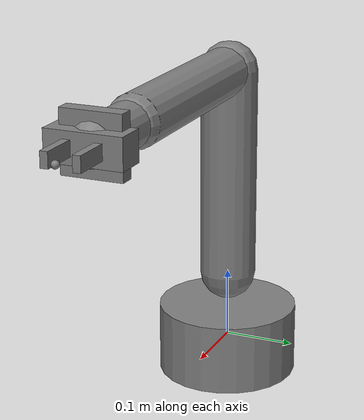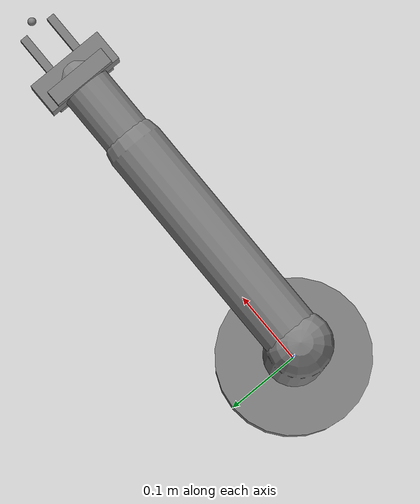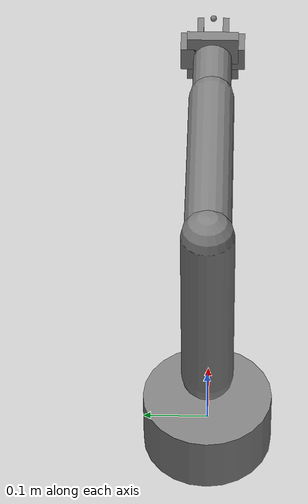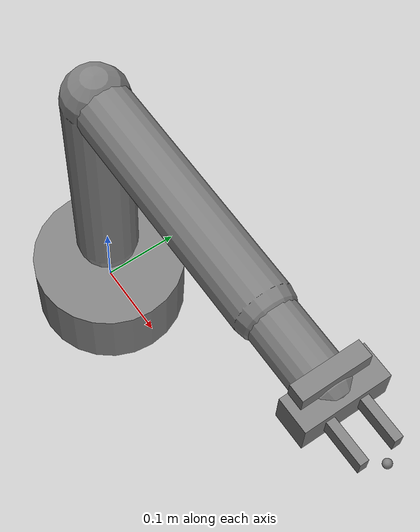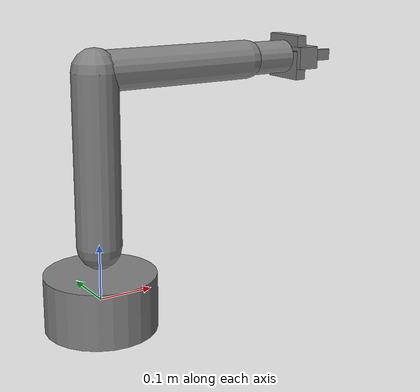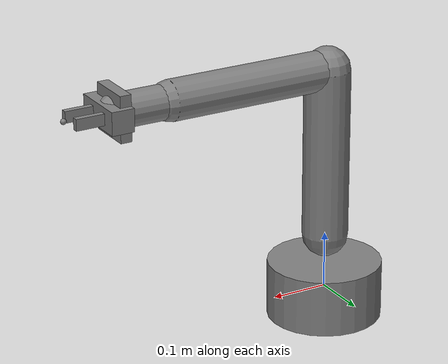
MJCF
<mujoco model="mujoco_arm">
  <compiler angle="radian" autolimits="true"/>
  <option timestep="0.002"/>
  <default>
    <joint damping="1"/>
    <position kp="50"/>
  </default>
  <worldbody>
    <light pos="0 0 2"/>
    <body name="base">
      <geom type="cylinder" size="0.1 0.05"/>
      <body name="link1" pos="0 0 0.1">
        <joint name="shoulder" axis="0 0 1"/>
        <geom type="capsule" fromto="0 0 0 0 0 0.3" size="0.04"/>
        <body name="link2" pos="0 0 0.3">
          <joint name="elbow" axis="0 1 0" range="-2 2"/>
          <geom type="capsule" fromto="0 0 0 0.3 0 0" size="0.035"/>
          <body name="link3" pos="0.3 0 0">
            <joint name="wrist" axis="1 0 0" range="-3 3"/>
            <geom type="capsule" fromto="0 0 0 0.1 0 0" size="0.03"/>
            <camera name="wrist_camera" pos="0.05 0 0.05" xyaxes="0 -1 0 0 0 1"/>
            <body pos="0.1 0 0">
              <geom type="box" size="0.01 0.04 0.04"/>
              <body name="flange" pos="0.01 0 0">
                <body name="gripper">
                  <geom type="box" size="0.02 0.05 0.02"/>
                  <site name="tcp" pos="0.08 0 0"/>
                  <body name="left_finger" pos="0.04 0.02 0">
                    <joint name="left_finger_joint" type="slide" axis="0 1 0" range="0 0.04"/>
                    <geom type="box" size="0.03 0.005 0.01"/>
                  </body>
                  <body name="right_finger" pos="0.04 -0.02 0">
                    <joint name="right_finger_joint" type="slide" axis="0 -1 0" range="0 0.04"/>
                    <geom type="box" size="0.03 0.005 0.01"/>
                  </body>
                </body>
              </body>
            </body>
          </body>
        </body>
      </body>
    </body>
  </worldbody>
  <contact>
    <exclude body1="base" body2="link2"/>
  </contact>
  <include file="actuators.xml"/>
  <keyframe>
    <key name="home" qpos="0.5 -1 0.25 0.02 0.02" ctrl="0.5 -1 0.25 0.02 0.02"/>
  </keyframe>
</mujoco>

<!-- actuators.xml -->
<!-- Included by arm.xml. -->
<mujoco>
  <actuator>
    <position name="shoulder" joint="shoulder"/>
    <position name="elbow" joint="elbow"/>
    <position name="wrist" joint="wrist"/>
    <position name="left_finger" joint="left_finger_joint" ctrlrange="0 0.04"/>
    <position name="right_finger" joint="right_finger_joint" ctrlrange="0 0.04"/>
  </actuator>
</mujoco>
